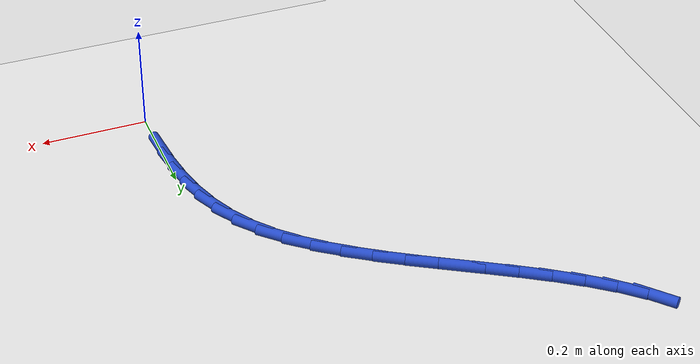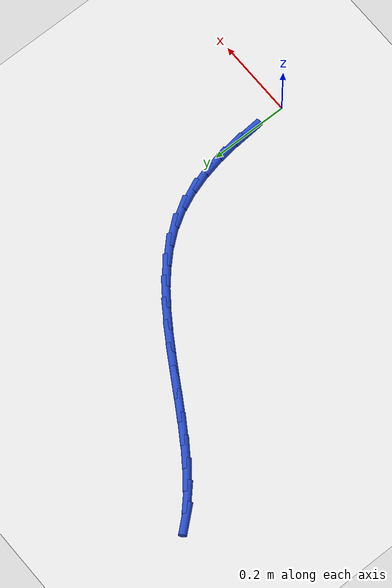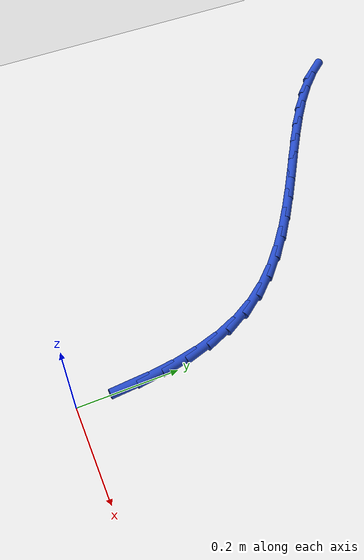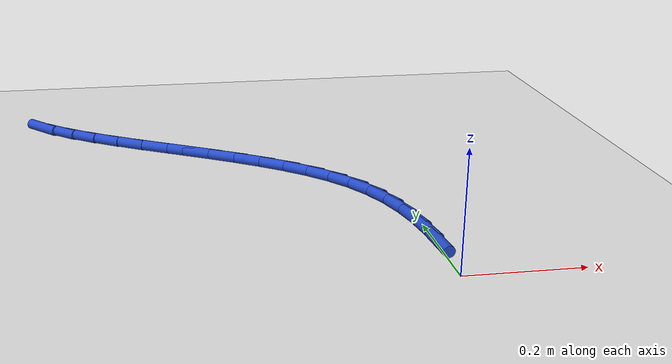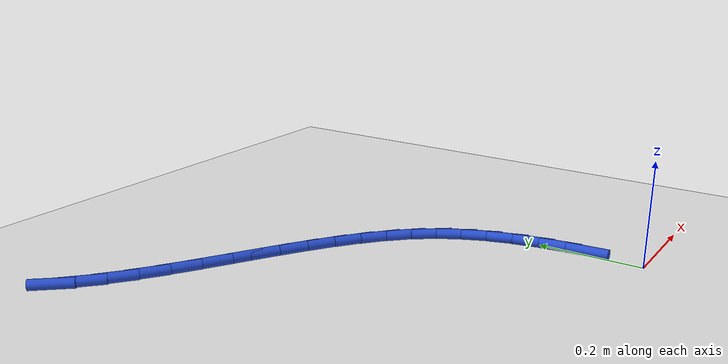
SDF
<sdf version="1.6">
 <world name="default">
  <model name="ground_plane">
   <static>1</static>
   <link name="link">
    <collision name="collision">
     <geometry><plane><normal>0 0 1</normal><size>100 100</size></plane></geometry>
     <surface><friction><ode><mu>100</mu><mu2>50</mu2></ode></friction></surface>
    </collision>
    <visual name="visual">
     <cast_shadows>0</cast_shadows>
     <geometry><plane><normal>0 0 1</normal><size>100 100</size></plane></geometry>
     <material>
      <script><uri>file://media/materials/scripts/gazebo.material</uri><name>Gazebo/WhiteGlow</name></script>
     </material>
    </visual>
   </link>
  </model>
  <model name="line">
   <link name="link_2">
    <pose>-0.0003457334321145674 0.10535750047948886 0.01 0 1.57 -1.4967418213716803</pose>
    <collision name="collision">
     <geometry><cylinder><radius>0.01</radius><length>0.08</length></cylinder></geometry>
    </collision>
    <visual name="visual">
     <material>
      <script><name>Gazebo/Blue</name><uri>file://media/materials/scripts/gazebo.material</uri></script>
     </material>
     <geometry><cylinder><radius>0.01</radius><length>0.08</length></cylinder></geometry>
    </visual>
   </link>
   <link name="link_3">
    <pose>-0.00421222070409771 0.15747339316978526 0.01 0 1.57 -1.4329949120833474</pose>
    <collision name="collision">
     <geometry><cylinder><radius>0.01</radius><length>0.08</length></cylinder></geometry>
    </collision>
    <visual name="visual">
     <material>
      <script><name>Gazebo/Blue</name><uri>file://media/materials/scripts/gazebo.material</uri></script>
     </material>
     <geometry><cylinder><radius>0.01</radius><length>0.08</length></cylinder></geometry>
    </visual>
   </link>
   <link name="link_4">
    <pose>-0.011298365475078918 0.208570360666498 0.01 0 1.57 -1.35496207583835</pose>
    <collision name="collision">
     <geometry><cylinder><radius>0.01</radius><length>0.08</length></cylinder></geometry>
    </collision>
    <visual name="visual">
     <material>
      <script><name>Gazebo/Blue</name><uri>file://media/materials/scripts/gazebo.material</uri></script>
     </material>
     <geometry><cylinder><radius>0.01</radius><length>0.08</length></cylinder></geometry>
    </visual>
   </link>
   <link name="link_5">
    <pose>-0.02217210059134382 0.25816563784916363 0.01 0 1.57 -1.261211601704958</pose>
    <collision name="collision">
     <geometry><cylinder><radius>0.01</radius><length>0.08</length></cylinder></geometry>
    </collision>
    <visual name="visual">
     <material>
      <script><name>Gazebo/Blue</name><uri>file://media/materials/scripts/gazebo.material</uri></script>
     </material>
     <geometry><cylinder><radius>0.01</radius><length>0.08</length></cylinder></geometry>
    </visual>
   </link>
   <link name="link_6">
    <pose>-0.03740135889917806 0.3057764595973184 0.01 0 1.57 -1.1509289118824793</pose>
    <collision name="collision">
     <geometry><cylinder><radius>0.01</radius><length>0.08</length></cylinder></geometry>
    </collision>
    <visual name="visual">
     <material>
      <script><name>Gazebo/Blue</name><uri>file://media/materials/scripts/gazebo.material</uri></script>
     </material>
     <geometry><cylinder><radius>0.01</radius><length>0.08</length></cylinder></geometry>
    </visual>
   </link>
   <link name="link_7">
    <pose>-0.05755407324486725 0.3509200607904987 0.01 0 1.57 -1.0247734232484178</pose>
    <collision name="collision">
     <geometry><cylinder><radius>0.01</radius><length>0.08</length></cylinder></geometry>
    </collision>
    <visual name="visual">
     <material>
      <script><name>Gazebo/Blue</name><uri>file://media/materials/scripts/gazebo.material</uri></script>
     </material>
     <geometry><cylinder><radius>0.01</radius><length>0.08</length></cylinder></geometry>
    </visual>
   </link>
   <link name="link_8">
    <pose>-0.08319441029813715 0.3931162070621145 0.01 0 1.57 -0.8959504965834816</pose>
    <collision name="collision">
     <geometry><cylinder><radius>0.01</radius><length>0.08</length></cylinder></geometry>
    </collision>
    <visual name="visual">
     <material>
      <script><name>Gazebo/Blue</name><uri>file://media/materials/scripts/gazebo.material</uri></script>
     </material>
     <geometry><cylinder><radius>0.01</radius><length>0.08</length></cylinder></geometry>
    </visual>
   </link>
   <link name="link_9">
    <pose>-0.11445036875524879 0.432177755399872 0.01 0 1.57 -0.7873207353098906</pose>
    <collision name="collision">
     <geometry><cylinder><radius>0.01</radius><length>0.08</length></cylinder></geometry>
    </collision>
    <visual name="visual">
     <material>
      <script><name>Gazebo/Blue</name><uri>file://media/materials/scripts/gazebo.material</uri></script>
     </material>
     <geometry><cylinder><radius>0.01</radius><length>0.08</length></cylinder></geometry>
    </visual>
   </link>
   <link name="link_10">
    <pose>-0.15061315529729935 0.46847986108000145 0.01 0 1.57 -0.7009551060248204</pose>
    <collision name="collision">
     <geometry><cylinder><radius>0.01</radius><length>0.08</length></cylinder></geometry>
    </collision>
    <visual name="visual">
     <material>
      <script><name>Gazebo/Blue</name><uri>file://media/materials/scripts/gazebo.material</uri></script>
     </material>
     <geometry><cylinder><radius>0.01</radius><length>0.08</length></cylinder></geometry>
    </visual>
   </link>
   <link name="link_11">
    <pose>-0.190879258121659 0.5024613272629463 0.01 0 1.57 -0.635003452888492</pose>
    <collision name="collision">
     <geometry><cylinder><radius>0.01</radius><length>0.08</length></cylinder></geometry>
    </collision>
    <visual name="visual">
     <material>
      <script><name>Gazebo/Blue</name><uri>file://media/materials/scripts/gazebo.material</uri></script>
     </material>
     <geometry><cylinder><radius>0.01</radius><length>0.08</length></cylinder></geometry>
    </visual>
   </link>
   <link name="link_12">
    <pose>-0.23444516542569777 0.5345609571091497 0.01 0 1.57 -0.5872276156693199</pose>
    <collision name="collision">
     <geometry><cylinder><radius>0.01</radius><length>0.08</length></cylinder></geometry>
    </collision>
    <visual name="visual">
     <material>
      <script><name>Gazebo/Blue</name><uri>file://media/materials/scripts/gazebo.material</uri></script>
     </material>
     <geometry><cylinder><radius>0.01</radius><length>0.08</length></cylinder></geometry>
    </visual>
   </link>
   <link name="link_13">
    <pose>-0.2805073654067858 0.5652175537790549 0.01 0 1.57 -0.5556651994651087</pose>
    <collision name="collision">
     <geometry><cylinder><radius>0.01</radius><length>0.08</length></cylinder></geometry>
    </collision>
    <visual name="visual">
     <material>
      <script><name>Gazebo/Blue</name><uri>file://media/materials/scripts/gazebo.material</uri></script>
     </material>
     <geometry><cylinder><radius>0.01</radius><length>0.08</length></cylinder></geometry>
    </visual>
   </link>
   <link name="link_14">
    <pose>-0.32826234626229306 0.5948699204331053 0.01 0 1.57 -0.5389124581091073</pose>
    <collision name="collision">
     <geometry><cylinder><radius>0.01</radius><length>0.08</length></cylinder></geometry>
    </collision>
    <visual name="visual">
     <material>
      <script><name>Gazebo/Blue</name><uri>file://media/materials/scripts/gazebo.material</uri></script>
     </material>
     <geometry><cylinder><radius>0.01</radius><length>0.08</length></cylinder></geometry>
    </visual>
   </link>
   <link name="link_15">
    <pose>-0.3769065961895898 0.6239568602317438 0.01 0 1.57 -0.5362188868014457</pose>
    <collision name="collision">
     <geometry><cylinder><radius>0.01</radius><length>0.08</length></cylinder></geometry>
    </collision>
    <visual name="visual">
     <material>
      <script><name>Gazebo/Blue</name><uri>file://media/materials/scripts/gazebo.material</uri></script>
     </material>
     <geometry><cylinder><radius>0.01</radius><length>0.08</length></cylinder></geometry>
    </visual>
   </link>
   <link name="link_16">
    <pose>-0.4256366033860461 0.6529171763354139 0.01 0 1.57 -0.5475126127471217</pose>
    <collision name="collision">
     <geometry><cylinder><radius>0.01</radius><length>0.08</length></cylinder></geometry>
    </collision>
    <visual name="visual">
     <material>
      <script><name>Gazebo/Blue</name><uri>file://media/materials/scripts/gazebo.material</uri></script>
     </material>
     <geometry><cylinder><radius>0.01</radius><length>0.08</length></cylinder></geometry>
    </visual>
   </link>
   <link name="link_17">
    <pose>-0.4736488560490321 0.6821896719045591 0.01 0 1.57 -0.5734109201992059</pose>
    <collision name="collision">
     <geometry><cylinder><radius>0.01</radius><length>0.08</length></cylinder></geometry>
    </collision>
    <visual name="visual">
     <material>
      <script><name>Gazebo/Blue</name><uri>file://media/materials/scripts/gazebo.material</uri></script>
     </material>
     <geometry><cylinder><radius>0.01</radius><length>0.08</length></cylinder></geometry>
    </visual>
   </link>
   <link name="link_18">
    <pose>-0.5201398423759176 0.712213150099622 0.01 0 1.57 -0.6152236396197325</pose>
    <collision name="collision">
     <geometry><cylinder><radius>0.01</radius><length>0.08</length></cylinder></geometry>
    </collision>
    <visual name="visual">
     <material>
      <script><name>Gazebo/Blue</name><uri>file://media/materials/scripts/gazebo.material</uri></script>
     </material>
     <geometry><cylinder><radius>0.01</radius><length>0.08</length></cylinder></geometry>
    </visual>
   </link>
   <link name="link_19">
    <pose>-0.5643060505640731 0.7434264140810467 0.01 0 1.57 -0.6749120622801789</pose>
    <collision name="collision">
     <geometry><cylinder><radius>0.01</radius><length>0.08</length></cylinder></geometry>
    </collision>
    <visual name="visual">
     <material>
      <script><name>Gazebo/Blue</name><uri>file://media/materials/scripts/gazebo.material</uri></script>
     </material>
     <geometry><cylinder><radius>0.01</radius><length>0.08</length></cylinder></geometry>
    </visual>
   </link>
   <link name="link_20">
    <pose>-0.6053439688108685 0.7762682670092759 0.01 0 1.57 -0.7549020256641142</pose>
    <collision name="collision">
     <geometry><cylinder><radius>0.01</radius><length>0.08</length></cylinder></geometry>
    </collision>
    <visual name="visual">
     <material>
      <script><name>Gazebo/Blue</name><uri>file://media/materials/scripts/gazebo.material</uri></script>
     </material>
     <geometry><cylinder><radius>0.01</radius><length>0.08</length></cylinder></geometry>
    </visual>
   </link>
   <link name="link_21">
    <pose>-0.6424500853136739 0.811177512044753 0.01 0 1.57 -0.8575596352595629</pose>
    <collision name="collision">
     <geometry><cylinder><radius>0.01</radius><length>0.08</length></cylinder></geometry>
    </collision>
    <visual name="visual">
     <material>
      <script><name>Gazebo/Blue</name><uri>file://media/materials/scripts/gazebo.material</uri></script>
     </material>
     <geometry><cylinder><radius>0.01</radius><length>0.08</length></cylinder></geometry>
    </visual>
   </link>
  </model>
 </world>
</sdf>
